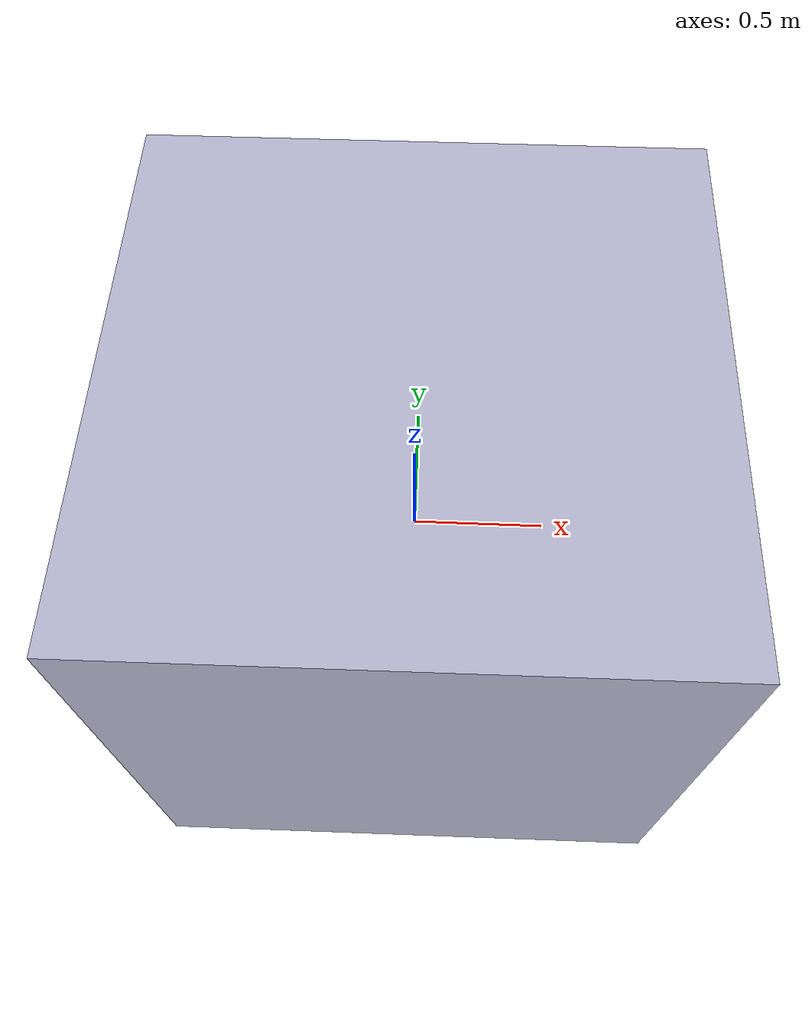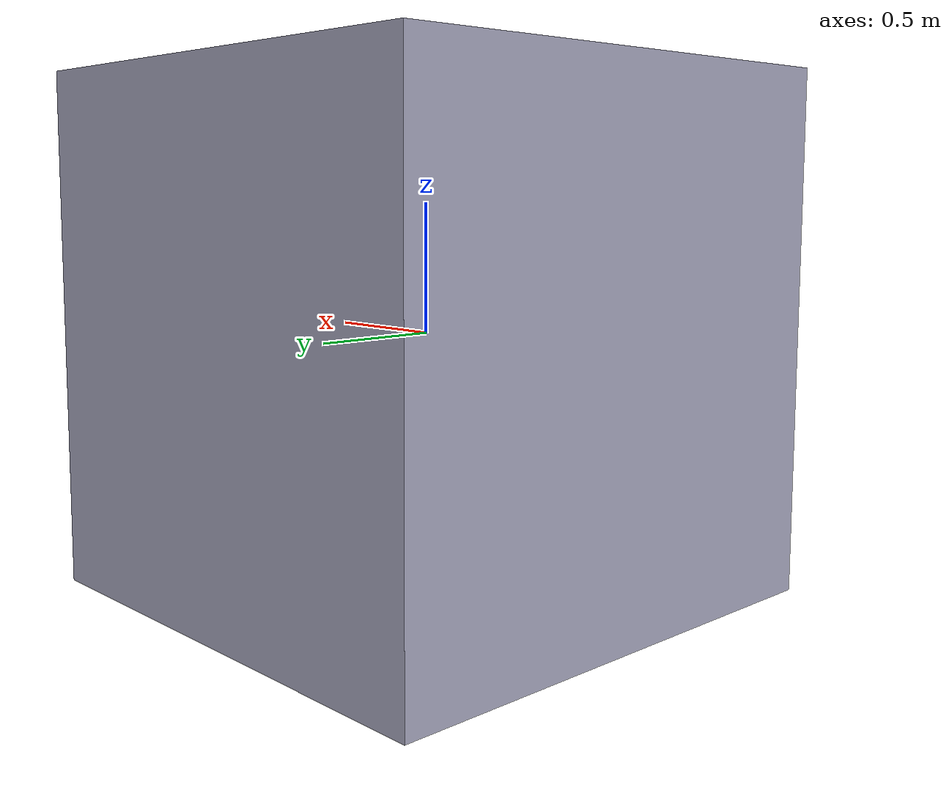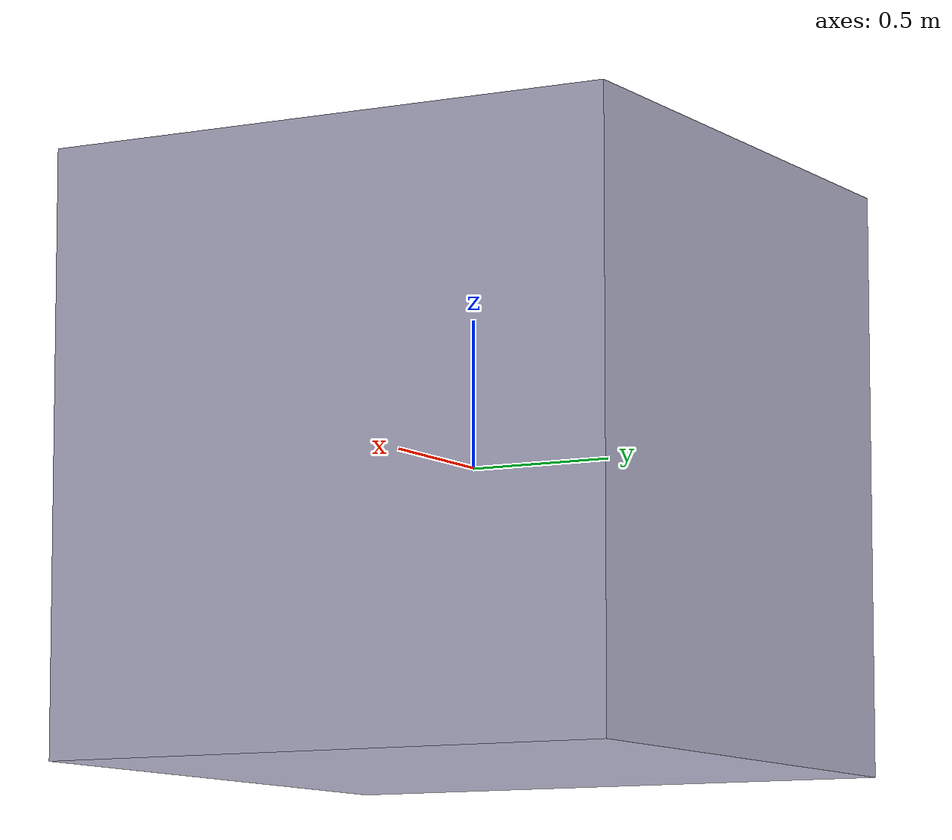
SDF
<?xml version="1.0" ?>
<sdf version="1.9">
  <model name="lander">
    <static>false</static>

    <plugin filename="gz-sim-odometry-publisher-system"
            name="gz::sim::systems::OdometryPublisher">
      <odom_frame>world</odom_frame>
      <robot_base_frame>lander</robot_base_frame>
      <publish_rate>50</publish_rate>
    </plugin>

    <plugin filename="gz-sim-apply-link-wrench-system"
            name="gz::sim::systems::ApplyLinkWrench"/>

    <!-- ============================================================
         MAIN BODY LINK
    ============================================================ -->
    <link name="body">

      <pose>0 0 0 0 0 0</pose>

      <inertial>
        <mass>2000.0</mass>
        <pose>0 0 0 0 0 0</pose>   <!-- CoM at link origin -->
        <inertia>
          <ixx>1333.3</ixx>
          <iyy>1333.3</iyy>
          <izz>1333.3</izz>
          <ixy>0.0</ixy>
          <ixz>0.0</ixz>
          <iyz>0.0</iyz>
        </inertia>
      </inertial>

      <!-- ============================================================
           COLLISION GEOMETRY
      ============================================================ -->
      <collision name="collision">
        <pose>0 0 0 0 0 0</pose>
        <geometry>
          <box><size>2 2 2</size></box>
        </geometry>
        <surface>
          <friction>
            <ode>
              <mu>0.6</mu>
              <mu2>0.6</mu2>
            </ode>
          </friction>
          <contact>
            <ode>
              <!-- Soft contact to avoid bounce/jitter on touchdown -->
              <kp>1e5</kp>
              <kd>1e2</kd>
              <max_vel>0.1</max_vel>
              <min_depth>0.001</min_depth>
            </ode>
          </contact>
        </surface>
      </collision>

      <!-- ============================================================
           VISUAL GEOMETRY
      ============================================================ -->
      <visual name="visual">
        <pose>0 0 0 0 0 0</pose>
        <geometry>
          <box><size>2 2 2</size></box>
        </geometry>
        <material>
          <ambient>0.7 0.7 0.8 1</ambient>
          <diffuse>0.7 0.7 0.8 1</diffuse>
          <specular>0.2 0.2 0.2 1</specular>
        </material>
      </visual>

      <sensor name="imu" type="imu">
        <always_on>true</always_on>
        <update_rate>100</update_rate>
        <topic>/imu/data</topic>
        <pose>0 0 0 0 0 0</pose>
        <imu>
          <angular_velocity>
            <x><noise type="gaussian"><mean>0.0</mean><stddev>0.001</stddev><bias_mean>0.0</bias_mean><bias_stddev>0.0001</bias_stddev></noise></x>
            <y><noise type="gaussian"><mean>0.0</mean><stddev>0.001</stddev><bias_mean>0.0</bias_mean><bias_stddev>0.0001</bias_stddev></noise></y>
            <z><noise type="gaussian"><mean>0.0</mean><stddev>0.001</stddev><bias_mean>0.0</bias_mean><bias_stddev>0.0001</bias_stddev></noise></z>
          </angular_velocity>
          <linear_acceleration>
            <x><noise type="gaussian"><mean>0.0</mean><stddev>0.01</stddev><bias_mean>0.0</bias_mean><bias_stddev>0.001</bias_stddev></noise></x>
            <y><noise type="gaussian"><mean>0.0</mean><stddev>0.01</stddev><bias_mean>0.0</bias_mean><bias_stddev>0.001</bias_stddev></noise></y>
            <z><noise type="gaussian"><mean>0.0</mean><stddev>0.01</stddev><bias_mean>0.0</bias_mean><bias_stddev>0.001</bias_stddev></noise></z>
          </linear_acceleration>
        </imu>
      </sensor>

      <sensor name="monocular_camera" type="camera">
        <always_on>true</always_on>
        <update_rate>5</update_rate>
        <topic>/camera/image_raw</topic>
        <pose>0 0 -1 0 1.5708 0</pose>
        <camera name="monocular_camera">
          <horizontal_fov>1.047</horizontal_fov>   <!-- 60 degrees -->
          <image>
            <width>320</width>
            <height>240</height>
            <format>R8G8B8</format>
          </image>
          <clip>
            <near>0.5</near>
            <far>3000.0</far>     <!-- must reach terrain at max altitude -->
          </clip>
          <noise>
            <type>gaussian</type>
            <mean>0.0</mean>
            <stddev>0.007</stddev>
          </noise>
        </camera>
      </sensor>

      <sensor name="altimeter" type="gpu_lidar">
        <always_on>true</always_on>
        <update_rate>50</update_rate>
        <topic>/altimeter/scan</topic>
        <pose>0 0 -1 0 1.5708 0</pose>
        <lidar>
          <scan>
            <horizontal>
              <samples>1</samples>
              <resolution>1</resolution>
              <min_angle>0</min_angle>
              <max_angle>0</max_angle>
            </horizontal>
            <vertical>
              <samples>1</samples>
              <resolution>1</resolution>
              <min_angle>0</min_angle>
              <max_angle>0</max_angle>
            </vertical>
          </scan>
          <range>
            <min>0.1</min>
            <max>3000.0</max>
            <resolution>0.01</resolution>
          </range>
          <noise>
            <type>gaussian</type>
            <mean>0.0</mean>
            <stddev>0.1</stddev>
          </noise>
        </lidar>
      </sensor>

    </link>
  </model>
</sdf>
